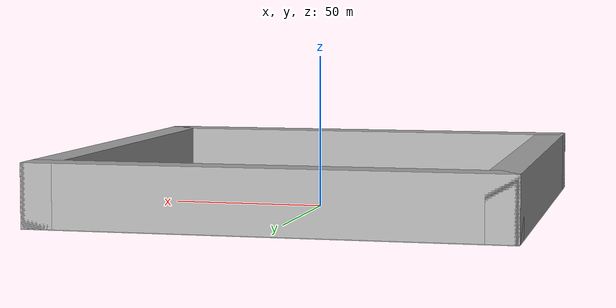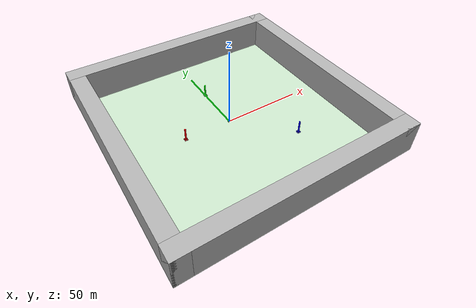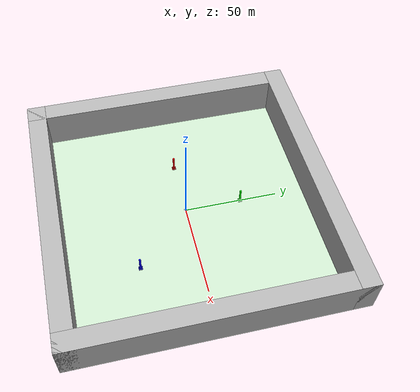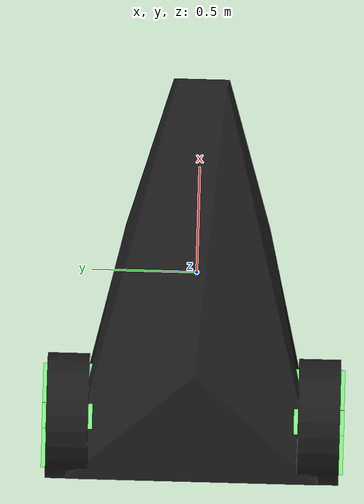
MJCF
<mujoco>
  <option timestep="0.001"/>

  <!-- Tài nguyên từ model xe -->
  <asset>
    <texture name="grid" type="2d" builtin="checker" width="512" height="512" rgb1=".1 .2 .3" rgb2=".2 .3 .4"/>
    <material name="grid" texture="grid" texrepeat="1 1" texuniform="true" reflectance=".2"/>
    <mesh name="chasis" scale=".10 .06 .015"
      vertex=" 9   2   0
              -10  10  10
               9  -2   0
               10  3  -10
               10 -3  -10
              -8   10 -10
              -10 -10  10
              -8  -10 -10
              -5   0   20"/>
  </asset>

  <!-- Cài đặt mặc định -->
  <default>
    <joint damping=".03" actuatorfrcrange="-100000 100000"/>
    <default class="wheel">
      <geom type="cylinder" size=".30 .10" rgba="0.1 0.1 0.1 1"/>
    </default>
    <default class="decor">
      <site type="box" rgba=".5 1 .5 1"/>
    </default>
  </default>

  <worldbody>
    <!-- Mặt sàn -->
    <geom name="ground" type="plane" size="75 75 0.1" pos="0 0 0" rgba="0.8 0.9 0.8 1"/>

    <!-- Tường bao quanh -->
    <geom name="wall_north" type="box" size="75 5 10" pos="0 70 10" rgba="0.7 0.7 0.7 1"/>
    <geom name="wall_south" type="box" size="75 5 10" pos="0 -70 10" rgba="0.7 0.7 0.7 1"/>
    <geom name="wall_east"  type="box" size="5 75 10" pos="70 0 10" rgba="0.7 0.7 0.7 1"/>
    <geom name="wall_west"  type="box" size="5 75 10" pos="-70 0 10" rgba="0.7 0.7 0.7 1"/>

    <!-- Bệ đỡ -->
    <body name="red_pedestal" pos="-30 0 4">
      <geom type="cylinder" size="0.5 4" pos="0 0 0.25" rgba="1 0 0 1"/>
      <geom type="box" size="1 1 0.25" pos="0 0 -3.75" rgba="0.5 0 0 1"/>
    </body>
    <body name="green_pedestal" pos="0 30 4">
      <geom type="cylinder" size="0.5 4" pos="0 0 0.25" rgba="0 1 0 1"/>
      <geom type="box" size="1 1 0.25" pos="0 0 -3.75" rgba="0 0.5 0 1"/>
    </body>
    <body name="blue_pedestal" pos="30 -30 4">
      <geom type="cylinder" size="0.5 4" pos="0 0 0.25" rgba="0 0 1 1"/>
      <geom type="box" size="1 1 0.25" pos="0 0 -3.75" rgba="0 0 0.5 1"/>
    </body>

    <!-- Model xe -->
    <body name="car" pos="0 0 .03">
      <freejoint/>
      <light name="top light" pos="0 0 2" mode="trackcom" diffuse=".4 .4 .4"/>
     <geom name="chasis" type="mesh" mesh="chasis" mass="0.5" rgba="0.1 0.1 0.1 1"/>
      <geom name="front wheel" pos=".8 0 -.15" type="sphere" size=".15" rgba="0.1 0.1 0.1 1" condim="1" priority="1"/>
      <light name="front light" pos=".1 0 .02" dir="2 0 -1" diffuse="1 1 1"/>
      <body name="left wheel" pos="-.70 .6 0" zaxis="0 1 0">
        <joint name="left"/>
        <geom class="wheel"/>
        <site class="decor" size=".06 .25 .12"/>
        <site class="decor" size=".25 .06 .12"/>
      </body>
      <body name="right wheel" pos="-.70 -.6 0" zaxis="0 1 0">
        <joint name="right"/>
        <geom class="wheel"/>
        <site class="decor" size=".06 .25 .12"/>
        <site class="decor" size=".25 .06 .12"/>
      </body>
    </body>

    <!-- Ánh sáng -->
    <light directional="true" diffuse="1.2 1.2 1.2" specular="0.4 0.4 0.4" pos="0 0 50" dir="0 0 -1"/>
    <light directional="true" diffuse="0.7 0.7 0.7" specular="0.2 0.2 0.2" pos="25 25 25" dir="-1 -1 -1"/>
  </worldbody>

  <tendon>
    <fixed name="forward">
      <joint joint="left" coef="1"/>
      <joint joint="right" coef="1"/>
    </fixed>
    <fixed name="turn">
      <joint joint="left" coef="-2"/>
      <joint joint="right" coef="2"/>
    </fixed>
  </tendon>

  <actuator>
    <motor name="forward" tendon="forward" ctrlrange="-10 10"/>
    <motor name="turn" tendon="turn" ctrlrange="-10 10"/>
  </actuator>

  <sensor>
    <jointactuatorfrc name="right" joint="right"/>
    <jointactuatorfrc name="left" joint="left"/>
  </sensor>
</mujoco>
